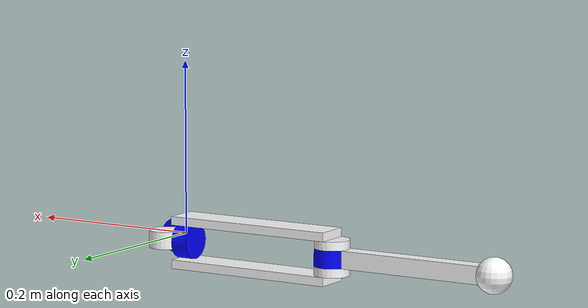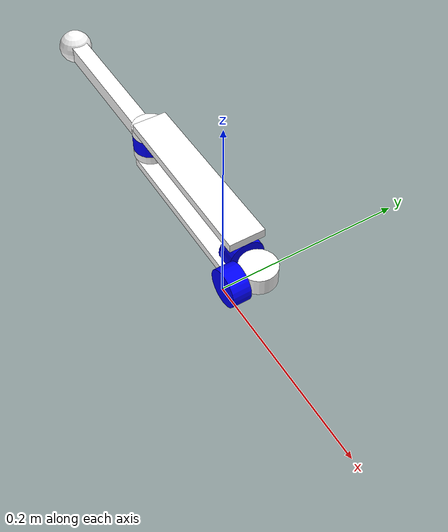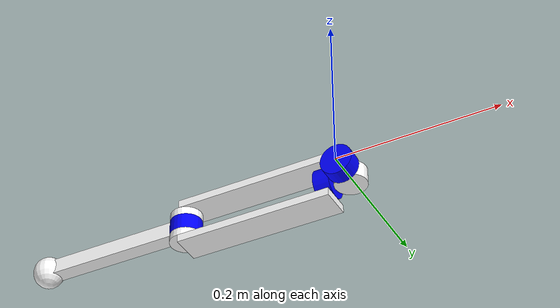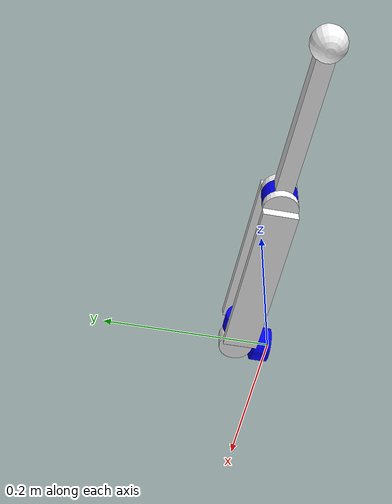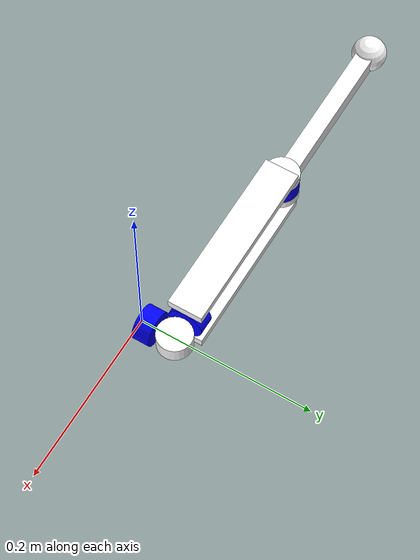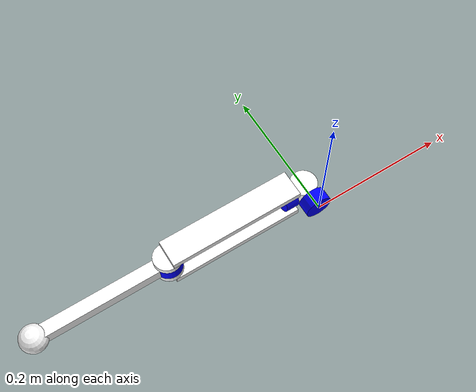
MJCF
<mujoco>
    <option timestep="0.0002" />
    <actuator>
        <motor gear="100" joint="joint_0" name="shoulder_pitch" ctrlrange="-50 50" ctrllimited="true"/>
        <motor gear="100" joint="joint_1" name="shoulder_roll" ctrlrange="-10 10" ctrllimited="true"/>
        <motor gear="100" joint="joint_2" name="shoulder_yaw" ctrlrange="-10 10" ctrllimited="true"/>
        <motor gear="100" joint="joint_3" name="elbow" ctrlrange="-10 10" ctrllimited="true"/>
    </actuator>
    <asset>
        <material name="black" rgba="0 0 0 0.5" />
        <material name="blue_" rgba="0 0 1 1" />
        <material name="green" rgba="0 1 0 1" />
        <material name="red__" rgba="1 0 0 1" />
        <material name="white" rgba="1 1 1 1" />
    </asset>
    <worldbody>
        <geom type="plane" size="1 1 0.1" pos="0 0 -1" rgba=".9 0 0 1" />
        <light diffuse=".5 .5 .5" pos="0 0 0" dir="0 0 -1" />
        <body name="pitch" pos="0 0 0">
            <joint name="joint_0" pos="0 0 0" axis="0 1 0" />
            <geom type="cylinder" size=".02 .01" pos="0 .01 0" euler="90 0 0" material="blue_" mass = "0.065"/>
            <body name="roll" pos="0 .04 0" euler="0 0 90">
                <joint name="joint_1" pos="0 0 0" axis="0 0 1" />
                <geom type="cylinder" size=".02 .01" pos="0 0 0" euler="0 0 0" material="white"  mass = "0.065"/>
                <body name="yaw" pos="0 0.4 0" euler="90 0 0">
                    <joint name="joint_2" pos="0 0 0" axis="0 0 1" />-
                    <geom type="cylinder" size=".02 .01" pos="0 0 0.37" euler="0 0 0" material="blue_"  mass = "0.065"/>
                    <geom type="box" size=".02 .005 .1" pos="0 .025 .28" euler="0 0 0" material="white" mass="0.010"/>
                    <geom type="box" size=".02 .005 .1" pos="0 -.025 .28" euler="0 0 0" material="white" mass="0.010"/>
                    <body name="elbow" pos="0 0 0.18" euler="90 0 0">
                        <joint name="joint_3" pos="0 0 0" axis="0 0 1" />-
                        <geom type="cylinder" size=".02 .01" pos="0 0 0" euler="0 0 0" material="blue_"  mass = "0.065"/>
                        <geom type="cylinder" size=".02 .005" pos="0 0 -0.015" euler="0 0 0" material="white"  mass = "0.065"/>
                        <geom type="cylinder" size=".02 .005" pos="0 0 0.015" euler="0 0 0" material="white"  mass = "0.065"/>
                        <geom type="box" size=".01 .01 .1" pos="0 -.1 0" euler="90 0 0" material="white" mass="0.020"/>
                        <body name="tool" pos="0 -.2 0" euler="0 0 0">
                            <geom type="sphere" size="0.02" pos="0 0 0" euler="0 0 0" material="white" mass="0.05"/>
                        </body>
                    </body>
                </body>
            </body>
        </body>
     <site name = 'target' size='0 0 .1' pos='0 .1 0' color = '0 1 0 0' />
    </worldbody>
</mujoco>
